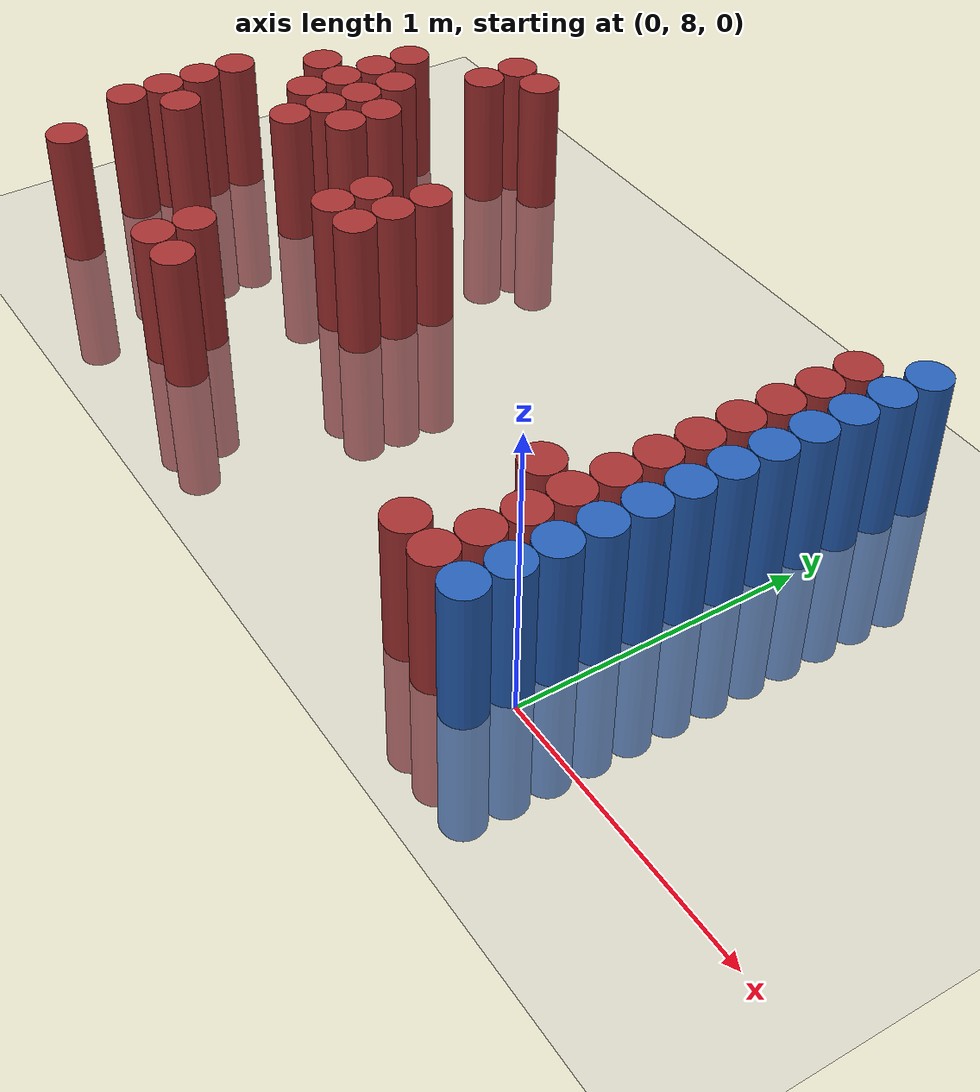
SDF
<sdf version="1.6">
 <world name="default">
  <model name="ground_plane">
   <static>1</static>
   <link name="link">
    <collision name="collision">
     <geometry><plane><normal>0 0 1</normal><size>100 100</size></plane></geometry>
     <surface><friction><ode><mu>100</mu><mu2>50</mu2></ode></friction></surface>
    </collision>
    <visual name="visual">
     <cast_shadows>0</cast_shadows>
     <geometry><plane><normal>0 0 1</normal><size>100 100</size></plane></geometry>
     <material>
      <script><uri>file://media/materials/scripts/gazebo.material</uri><name>Gazebo/Grey</name></script>
     </material>
    </visual>
   </link>
  </model>
  <model name="unit_cylinder_229">
   <static>1</static>
   <pose>-2.925000 8.175000 0.000000 0.000000 0.000000 0.000000</pose>
   <link name="link">
    <inertial>
     <mass>1</mass>
     <inertia><ixx>0.145833</ixx><ixy>0</ixy><ixz>0</ixz><iyy>0.145833</iyy><iyz>0</iyz><izz>0.125</izz></inertia>
    </inertial>
    <collision name="collision">
     <geometry><cylinder><radius>0.075000</radius><length>1</length></cylinder></geometry>
    </collision>
    <visual name="visual">
     <geometry><cylinder><radius>0.075000</radius><length>1</length></cylinder></geometry>
     <material>
      <ambient>0.648000 0.192000 0.192000 1</ambient>
      <diffuse>0.648000 0.192000 0.192000 1</diffuse>
     </material>
     <material>
      <script><name>Gazebo/Grey</name><uri>file://media/materials/scripts/gazebo.material</uri></script>
     </material>
    </visual>
   </link>
  </model>
  <model name="unit_cylinder_230">
   <static>1</static>
   <pose>-2.925000 8.325000 0.000000 0.000000 0.000000 0.000000</pose>
   <link name="link">
    <inertial>
     <mass>1</mass>
     <inertia><ixx>0.145833</ixx><ixy>0</ixy><ixz>0</ixz><iyy>0.145833</iyy><iyz>0</iyz><izz>0.125</izz></inertia>
    </inertial>
    <collision name="collision">
     <geometry><cylinder><radius>0.075000</radius><length>1</length></cylinder></geometry>
    </collision>
    <visual name="visual">
     <geometry><cylinder><radius>0.075000</radius><length>1</length></cylinder></geometry>
     <material>
      <ambient>0.648000 0.192000 0.192000 1</ambient>
      <diffuse>0.648000 0.192000 0.192000 1</diffuse>
     </material>
     <material>
      <script><name>Gazebo/Grey</name><uri>file://media/materials/scripts/gazebo.material</uri></script>
     </material>
    </visual>
   </link>
  </model>
  <model name="unit_cylinder_231">
   <static>1</static>
   <pose>-2.925000 8.475000 0.000000 0.000000 0.000000 0.000000</pose>
   <link name="link">
    <inertial>
     <mass>1</mass>
     <inertia><ixx>0.145833</ixx><ixy>0</ixy><ixz>0</ixz><iyy>0.145833</iyy><iyz>0</iyz><izz>0.125</izz></inertia>
    </inertial>
    <collision name="collision">
     <geometry><cylinder><radius>0.075000</radius><length>1</length></cylinder></geometry>
    </collision>
    <visual name="visual">
     <geometry><cylinder><radius>0.075000</radius><length>1</length></cylinder></geometry>
     <material>
      <ambient>0.648000 0.192000 0.192000 1</ambient>
      <diffuse>0.648000 0.192000 0.192000 1</diffuse>
     </material>
     <material>
      <script><name>Gazebo/Grey</name><uri>file://media/materials/scripts/gazebo.material</uri></script>
     </material>
    </visual>
   </link>
  </model>
  <model name="unit_cylinder_232">
   <static>1</static>
   <pose>-2.925000 8.625000 0.000000 0.000000 0.000000 0.000000</pose>
   <link name="link">
    <inertial>
     <mass>1</mass>
     <inertia><ixx>0.145833</ixx><ixy>0</ixy><ixz>0</ixz><iyy>0.145833</iyy><iyz>0</iyz><izz>0.125</izz></inertia>
    </inertial>
    <collision name="collision">
     <geometry><cylinder><radius>0.075000</radius><length>1</length></cylinder></geometry>
    </collision>
    <visual name="visual">
     <geometry><cylinder><radius>0.075000</radius><length>1</length></cylinder></geometry>
     <material>
      <ambient>0.648000 0.192000 0.192000 1</ambient>
      <diffuse>0.648000 0.192000 0.192000 1</diffuse>
     </material>
     <material>
      <script><name>Gazebo/Grey</name><uri>file://media/materials/scripts/gazebo.material</uri></script>
     </material>
    </visual>
   </link>
  </model>
  <model name="unit_cylinder_235">
   <static>1</static>
   <pose>-2.775000 7.875000 0.000000 0.000000 0.000000 0.000000</pose>
   <link name="link">
    <inertial>
     <mass>1</mass>
     <inertia><ixx>0.145833</ixx><ixy>0</ixy><ixz>0</ixz><iyy>0.145833</iyy><iyz>0</iyz><izz>0.125</izz></inertia>
    </inertial>
    <collision name="collision">
     <geometry><cylinder><radius>0.075000</radius><length>1</length></cylinder></geometry>
    </collision>
    <visual name="visual">
     <geometry><cylinder><radius>0.075000</radius><length>1</length></cylinder></geometry>
     <material>
      <ambient>0.648000 0.192000 0.192000 1</ambient>
      <diffuse>0.648000 0.192000 0.192000 1</diffuse>
     </material>
     <material>
      <script><name>Gazebo/Grey</name><uri>file://media/materials/scripts/gazebo.material</uri></script>
     </material>
    </visual>
   </link>
  </model>
  <model name="unit_cylinder_236">
   <static>1</static>
   <pose>-2.775000 8.325000 0.000000 0.000000 0.000000 0.000000</pose>
   <link name="link">
    <inertial>
     <mass>1</mass>
     <inertia><ixx>0.145833</ixx><ixy>0</ixy><ixz>0</ixz><iyy>0.145833</iyy><iyz>0</iyz><izz>0.125</izz></inertia>
    </inertial>
    <collision name="collision">
     <geometry><cylinder><radius>0.075000</radius><length>1</length></cylinder></geometry>
    </collision>
    <visual name="visual">
     <geometry><cylinder><radius>0.075000</radius><length>1</length></cylinder></geometry>
     <material>
      <ambient>0.648000 0.192000 0.192000 1</ambient>
      <diffuse>0.648000 0.192000 0.192000 1</diffuse>
     </material>
     <material>
      <script><name>Gazebo/Grey</name><uri>file://media/materials/scripts/gazebo.material</uri></script>
     </material>
    </visual>
   </link>
  </model>
  <model name="unit_cylinder_237">
   <static>1</static>
   <pose>-2.775000 8.925000 0.000000 0.000000 0.000000 0.000000</pose>
   <link name="link">
    <inertial>
     <mass>1</mass>
     <inertia><ixx>0.145833</ixx><ixy>0</ixy><ixz>0</ixz><iyy>0.145833</iyy><iyz>0</iyz><izz>0.125</izz></inertia>
    </inertial>
    <collision name="collision">
     <geometry><cylinder><radius>0.075000</radius><length>1</length></cylinder></geometry>
    </collision>
    <visual name="visual">
     <geometry><cylinder><radius>0.075000</radius><length>1</length></cylinder></geometry>
     <material>
      <ambient>0.648000 0.192000 0.192000 1</ambient>
      <diffuse>0.648000 0.192000 0.192000 1</diffuse>
     </material>
     <material>
      <script><name>Gazebo/Grey</name><uri>file://media/materials/scripts/gazebo.material</uri></script>
     </material>
    </visual>
   </link>
  </model>
  <model name="unit_cylinder_239">
   <static>1</static>
   <pose>-2.625000 8.775000 0.000000 0.000000 0.000000 0.000000</pose>
   <link name="link">
    <inertial>
     <mass>1</mass>
     <inertia><ixx>0.145833</ixx><ixy>0</ixy><ixz>0</ixz><iyy>0.145833</iyy><iyz>0</iyz><izz>0.125</izz></inertia>
    </inertial>
    <collision name="collision">
     <geometry><cylinder><radius>0.075000</radius><length>1</length></cylinder></geometry>
    </collision>
    <visual name="visual">
     <geometry><cylinder><radius>0.075000</radius><length>1</length></cylinder></geometry>
     <material>
      <ambient>0.648000 0.192000 0.192000 1</ambient>
      <diffuse>0.648000 0.192000 0.192000 1</diffuse>
     </material>
     <material>
      <script><name>Gazebo/Grey</name><uri>file://media/materials/scripts/gazebo.material</uri></script>
     </material>
    </visual>
   </link>
  </model>
  <model name="unit_cylinder_240">
   <static>1</static>
   <pose>-2.625000 8.925000 0.000000 0.000000 0.000000 0.000000</pose>
   <link name="link">
    <inertial>
     <mass>1</mass>
     <inertia><ixx>0.145833</ixx><ixy>0</ixy><ixz>0</ixz><iyy>0.145833</iyy><iyz>0</iyz><izz>0.125</izz></inertia>
    </inertial>
    <collision name="collision">
     <geometry><cylinder><radius>0.075000</radius><length>1</length></cylinder></geometry>
    </collision>
    <visual name="visual">
     <geometry><cylinder><radius>0.075000</radius><length>1</length></cylinder></geometry>
     <material>
      <ambient>0.648000 0.192000 0.192000 1</ambient>
      <diffuse>0.648000 0.192000 0.192000 1</diffuse>
     </material>
     <material>
      <script><name>Gazebo/Grey</name><uri>file://media/materials/scripts/gazebo.material</uri></script>
     </material>
    </visual>
   </link>
  </model>
  <model name="unit_cylinder_241">
   <static>1</static>
   <pose>-2.625000 9.075000 0.000000 0.000000 0.000000 0.000000</pose>
   <link name="link">
    <inertial>
     <mass>1</mass>
     <inertia><ixx>0.145833</ixx><ixy>0</ixy><ixz>0</ixz><iyy>0.145833</iyy><iyz>0</iyz><izz>0.125</izz></inertia>
    </inertial>
    <collision name="collision">
     <geometry><cylinder><radius>0.075000</radius><length>1</length></cylinder></geometry>
    </collision>
    <visual name="visual">
     <geometry><cylinder><radius>0.075000</radius><length>1</length></cylinder></geometry>
     <material>
      <ambient>0.648000 0.192000 0.192000 1</ambient>
      <diffuse>0.648000 0.192000 0.192000 1</diffuse>
     </material>
     <material>
      <script><name>Gazebo/Grey</name><uri>file://media/materials/scripts/gazebo.material</uri></script>
     </material>
    </visual>
   </link>
  </model>
  <model name="unit_cylinder_242">
   <static>1</static>
   <pose>-2.625000 9.225000 0.000000 0.000000 0.000000 0.000000</pose>
   <link name="link">
    <inertial>
     <mass>1</mass>
     <inertia><ixx>0.145833</ixx><ixy>0</ixy><ixz>0</ixz><iyy>0.145833</iyy><iyz>0</iyz><izz>0.125</izz></inertia>
    </inertial>
    <collision name="collision">
     <geometry><cylinder><radius>0.075000</radius><length>1</length></cylinder></geometry>
    </collision>
    <visual name="visual">
     <geometry><cylinder><radius>0.075000</radius><length>1</length></cylinder></geometry>
     <material>
      <ambient>0.648000 0.192000 0.192000 1</ambient>
      <diffuse>0.648000 0.192000 0.192000 1</diffuse>
     </material>
     <material>
      <script><name>Gazebo/Grey</name><uri>file://media/materials/scripts/gazebo.material</uri></script>
     </material>
    </visual>
   </link>
  </model>
  <model name="unit_cylinder_248">
   <static>1</static>
   <pose>-2.475000 8.625000 0.000000 0.000000 0.000000 0.000000</pose>
   <link name="link">
    <inertial>
     <mass>1</mass>
     <inertia><ixx>0.145833</ixx><ixy>0</ixy><ixz>0</ixz><iyy>0.145833</iyy><iyz>0</iyz><izz>0.125</izz></inertia>
    </inertial>
    <collision name="collision">
     <geometry><cylinder><radius>0.075000</radius><length>1</length></cylinder></geometry>
    </collision>
    <visual name="visual">
     <geometry><cylinder><radius>0.075000</radius><length>1</length></cylinder></geometry>
     <material>
      <ambient>0.648000 0.192000 0.192000 1</ambient>
      <diffuse>0.648000 0.192000 0.192000 1</diffuse>
     </material>
     <material>
      <script><name>Gazebo/Grey</name><uri>file://media/materials/scripts/gazebo.material</uri></script>
     </material>
    </visual>
   </link>
  </model>
  <model name="unit_cylinder_249">
   <static>1</static>
   <pose>-2.475000 8.775000 0.000000 0.000000 0.000000 0.000000</pose>
   <link name="link">
    <inertial>
     <mass>1</mass>
     <inertia><ixx>0.145833</ixx><ixy>0</ixy><ixz>0</ixz><iyy>0.145833</iyy><iyz>0</iyz><izz>0.125</izz></inertia>
    </inertial>
    <collision name="collision">
     <geometry><cylinder><radius>0.075000</radius><length>1</length></cylinder></geometry>
    </collision>
    <visual name="visual">
     <geometry><cylinder><radius>0.075000</radius><length>1</length></cylinder></geometry>
     <material>
      <ambient>0.648000 0.192000 0.192000 1</ambient>
      <diffuse>0.648000 0.192000 0.192000 1</diffuse>
     </material>
     <material>
      <script><name>Gazebo/Grey</name><uri>file://media/materials/scripts/gazebo.material</uri></script>
     </material>
    </visual>
   </link>
  </model>
  <model name="unit_cylinder_250">
   <static>1</static>
   <pose>-2.475000 8.925000 0.000000 0.000000 0.000000 0.000000</pose>
   <link name="link">
    <inertial>
     <mass>1</mass>
     <inertia><ixx>0.145833</ixx><ixy>0</ixy><ixz>0</ixz><iyy>0.145833</iyy><iyz>0</iyz><izz>0.125</izz></inertia>
    </inertial>
    <collision name="collision">
     <geometry><cylinder><radius>0.075000</radius><length>1</length></cylinder></geometry>
    </collision>
    <visual name="visual">
     <geometry><cylinder><radius>0.075000</radius><length>1</length></cylinder></geometry>
     <material>
      <ambient>0.648000 0.192000 0.192000 1</ambient>
      <diffuse>0.648000 0.192000 0.192000 1</diffuse>
     </material>
     <material>
      <script><name>Gazebo/Grey</name><uri>file://media/materials/scripts/gazebo.material</uri></script>
     </material>
    </visual>
   </link>
  </model>
  <model name="unit_cylinder_251">
   <static>1</static>
   <pose>-2.475000 9.075000 0.000000 0.000000 0.000000 0.000000</pose>
   <link name="link">
    <inertial>
     <mass>1</mass>
     <inertia><ixx>0.145833</ixx><ixy>0</ixy><ixz>0</ixz><iyy>0.145833</iyy><iyz>0</iyz><izz>0.125</izz></inertia>
    </inertial>
    <collision name="collision">
     <geometry><cylinder><radius>0.075000</radius><length>1</length></cylinder></geometry>
    </collision>
    <visual name="visual">
     <geometry><cylinder><radius>0.075000</radius><length>1</length></cylinder></geometry>
     <material>
      <ambient>0.648000 0.192000 0.192000 1</ambient>
      <diffuse>0.648000 0.192000 0.192000 1</diffuse>
     </material>
     <material>
      <script><name>Gazebo/Grey</name><uri>file://media/materials/scripts/gazebo.material</uri></script>
     </material>
    </visual>
   </link>
  </model>
  <model name="unit_cylinder_258">
   <static>1</static>
   <pose>-2.325000 8.775000 0.000000 0.000000 0.000000 0.000000</pose>
   <link name="link">
    <inertial>
     <mass>1</mass>
     <inertia><ixx>0.145833</ixx><ixy>0</ixy><ixz>0</ixz><iyy>0.145833</iyy><iyz>0</iyz><izz>0.125</izz></inertia>
    </inertial>
    <collision name="collision">
     <geometry><cylinder><radius>0.075000</radius><length>1</length></cylinder></geometry>
    </collision>
    <visual name="visual">
     <geometry><cylinder><radius>0.075000</radius><length>1</length></cylinder></geometry>
     <material>
      <ambient>0.648000 0.192000 0.192000 1</ambient>
      <diffuse>0.648000 0.192000 0.192000 1</diffuse>
     </material>
     <material>
      <script><name>Gazebo/Grey</name><uri>file://media/materials/scripts/gazebo.material</uri></script>
     </material>
    </visual>
   </link>
  </model>
  <model name="unit_cylinder_259">
   <static>1</static>
   <pose>-2.325000 8.925000 0.000000 0.000000 0.000000 0.000000</pose>
   <link name="link">
    <inertial>
     <mass>1</mass>
     <inertia><ixx>0.145833</ixx><ixy>0</ixy><ixz>0</ixz><iyy>0.145833</iyy><iyz>0</iyz><izz>0.125</izz></inertia>
    </inertial>
    <collision name="collision">
     <geometry><cylinder><radius>0.075000</radius><length>1</length></cylinder></geometry>
    </collision>
    <visual name="visual">
     <geometry><cylinder><radius>0.075000</radius><length>1</length></cylinder></geometry>
     <material>
      <ambient>0.648000 0.192000 0.192000 1</ambient>
      <diffuse>0.648000 0.192000 0.192000 1</diffuse>
     </material>
     <material>
      <script><name>Gazebo/Grey</name><uri>file://media/materials/scripts/gazebo.material</uri></script>
     </material>
    </visual>
   </link>
  </model>
  <model name="unit_cylinder_260">
   <static>1</static>
   <pose>-2.325000 9.375000 0.000000 0.000000 0.000000 0.000000</pose>
   <link name="link">
    <inertial>
     <mass>1</mass>
     <inertia><ixx>0.145833</ixx><ixy>0</ixy><ixz>0</ixz><iyy>0.145833</iyy><iyz>0</iyz><izz>0.125</izz></inertia>
    </inertial>
    <collision name="collision">
     <geometry><cylinder><radius>0.075000</radius><length>1</length></cylinder></geometry>
    </collision>
    <visual name="visual">
     <geometry><cylinder><radius>0.075000</radius><length>1</length></cylinder></geometry>
     <material>
      <ambient>0.648000 0.192000 0.192000 1</ambient>
      <diffuse>0.648000 0.192000 0.192000 1</diffuse>
     </material>
     <material>
      <script><name>Gazebo/Grey</name><uri>file://media/materials/scripts/gazebo.material</uri></script>
     </material>
    </visual>
   </link>
  </model>
  <model name="unit_cylinder_261">
   <static>1</static>
   <pose>-2.325000 9.525000 0.000000 0.000000 0.000000 0.000000</pose>
   <link name="link">
    <inertial>
     <mass>1</mass>
     <inertia><ixx>0.145833</ixx><ixy>0</ixy><ixz>0</ixz><iyy>0.145833</iyy><iyz>0</iyz><izz>0.125</izz></inertia>
    </inertial>
    <collision name="collision">
     <geometry><cylinder><radius>0.075000</radius><length>1</length></cylinder></geometry>
    </collision>
    <visual name="visual">
     <geometry><cylinder><radius>0.075000</radius><length>1</length></cylinder></geometry>
     <material>
      <ambient>0.648000 0.192000 0.192000 1</ambient>
      <diffuse>0.648000 0.192000 0.192000 1</diffuse>
     </material>
     <material>
      <script><name>Gazebo/Grey</name><uri>file://media/materials/scripts/gazebo.material</uri></script>
     </material>
    </visual>
   </link>
  </model>
  <model name="unit_cylinder_272">
   <static>1</static>
   <pose>-2.175000 9.525000 0.000000 0.000000 0.000000 0.000000</pose>
   <link name="link">
    <inertial>
     <mass>1</mass>
     <inertia><ixx>0.145833</ixx><ixy>0</ixy><ixz>0</ixz><iyy>0.145833</iyy><iyz>0</iyz><izz>0.125</izz></inertia>
    </inertial>
    <collision name="collision">
     <geometry><cylinder><radius>0.075000</radius><length>1</length></cylinder></geometry>
    </collision>
    <visual name="visual">
     <geometry><cylinder><radius>0.075000</radius><length>1</length></cylinder></geometry>
     <material>
      <ambient>0.648000 0.192000 0.192000 1</ambient>
      <diffuse>0.648000 0.192000 0.192000 1</diffuse>
     </material>
     <material>
      <script><name>Gazebo/Grey</name><uri>file://media/materials/scripts/gazebo.material</uri></script>
     </material>
    </visual>
   </link>
  </model>
  <model name="unit_cylinder_282">
   <static>1</static>
   <pose>-2.025000 7.875000 0.000000 0.000000 0.000000 0.000000</pose>
   <link name="link">
    <inertial>
     <mass>1</mass>
     <inertia><ixx>0.145833</ixx><ixy>0</ixy><ixz>0</ixz><iyy>0.145833</iyy><iyz>0</iyz><izz>0.125</izz></inertia>
    </inertial>
    <collision name="collision">
     <geometry><cylinder><radius>0.075000</radius><length>1</length></cylinder></geometry>
    </collision>
    <visual name="visual">
     <geometry><cylinder><radius>0.075000</radius><length>1</length></cylinder></geometry>
     <material>
      <ambient>0.648000 0.192000 0.192000 1</ambient>
      <diffuse>0.648000 0.192000 0.192000 1</diffuse>
     </material>
     <material>
      <script><name>Gazebo/Grey</name><uri>file://media/materials/scripts/gazebo.material</uri></script>
     </material>
    </visual>
   </link>
  </model>
  <model name="unit_cylinder_283">
   <static>1</static>
   <pose>-2.025000 8.025000 0.000000 0.000000 0.000000 0.000000</pose>
   <link name="link">
    <inertial>
     <mass>1</mass>
     <inertia><ixx>0.145833</ixx><ixy>0</ixy><ixz>0</ixz><iyy>0.145833</iyy><iyz>0</iyz><izz>0.125</izz></inertia>
    </inertial>
    <collision name="collision">
     <geometry><cylinder><radius>0.075000</radius><length>1</length></cylinder></geometry>
    </collision>
    <visual name="visual">
     <geometry><cylinder><radius>0.075000</radius><length>1</length></cylinder></geometry>
     <material>
      <ambient>0.648000 0.192000 0.192000 1</ambient>
      <diffuse>0.648000 0.192000 0.192000 1</diffuse>
     </material>
     <material>
      <script><name>Gazebo/Grey</name><uri>file://media/materials/scripts/gazebo.material</uri></script>
     </material>
    </visual>
   </link>
  </model>
  <model name="unit_cylinder_290">
   <static>1</static>
   <pose>-1.875000 7.875000 0.000000 0.000000 0.000000 0.000000</pose>
   <link name="link">
    <inertial>
     <mass>1</mass>
     <inertia><ixx>0.145833</ixx><ixy>0</ixy><ixz>0</ixz><iyy>0.145833</iyy><iyz>0</iyz><izz>0.125</izz></inertia>
    </inertial>
    <collision name="collision">
     <geometry><cylinder><radius>0.075000</radius><length>1</length></cylinder></geometry>
    </collision>
    <visual name="visual">
     <geometry><cylinder><radius>0.075000</radius><length>1</length></cylinder></geometry>
     <material>
      <ambient>0.648000 0.192000 0.192000 1</ambient>
      <diffuse>0.648000 0.192000 0.192000 1</diffuse>
     </material>
     <material>
      <script><name>Gazebo/Grey</name><uri>file://media/materials/scripts/gazebo.material</uri></script>
     </material>
    </visual>
   </link>
  </model>
  <model name="unit_cylinder_291">
   <static>1</static>
   <pose>-1.875000 8.475000 0.000000 0.000000 0.000000 0.000000</pose>
   <link name="link">
    <inertial>
     <mass>1</mass>
     <inertia><ixx>0.145833</ixx><ixy>0</ixy><ixz>0</ixz><iyy>0.145833</iyy><iyz>0</iyz><izz>0.125</izz></inertia>
    </inertial>
    <collision name="collision">
     <geometry><cylinder><radius>0.075000</radius><length>1</length></cylinder></geometry>
    </collision>
    <visual name="visual">
     <geometry><cylinder><radius>0.075000</radius><length>1</length></cylinder></geometry>
     <material>
      <ambient>0.648000 0.192000 0.192000 1</ambient>
      <diffuse>0.648000 0.192000 0.192000 1</diffuse>
     </material>
     <material>
      <script><name>Gazebo/Grey</name><uri>file://media/materials/scripts/gazebo.material</uri></script>
     </material>
    </visual>
   </link>
  </model>
  <model name="unit_cylinder_292">
   <static>1</static>
   <pose>-1.875000 8.625000 0.000000 0.000000 0.000000 0.000000</pose>
   <link name="link">
    <inertial>
     <mass>1</mass>
     <inertia><ixx>0.145833</ixx><ixy>0</ixy><ixz>0</ixz><iyy>0.145833</iyy><iyz>0</iyz><izz>0.125</izz></inertia>
    </inertial>
    <collision name="collision">
     <geometry><cylinder><radius>0.075000</radius><length>1</length></cylinder></geometry>
    </collision>
    <visual name="visual">
     <geometry><cylinder><radius>0.075000</radius><length>1</length></cylinder></geometry>
     <material>
      <ambient>0.648000 0.192000 0.192000 1</ambient>
      <diffuse>0.648000 0.192000 0.192000 1</diffuse>
     </material>
     <material>
      <script><name>Gazebo/Grey</name><uri>file://media/materials/scripts/gazebo.material</uri></script>
     </material>
    </visual>
   </link>
  </model>
  <model name="unit_cylinder_300">
   <static>1</static>
   <pose>-1.725000 8.475000 0.000000 0.000000 0.000000 0.000000</pose>
   <link name="link">
    <inertial>
     <mass>1</mass>
     <inertia><ixx>0.145833</ixx><ixy>0</ixy><ixz>0</ixz><iyy>0.145833</iyy><iyz>0</iyz><izz>0.125</izz></inertia>
    </inertial>
    <collision name="collision">
     <geometry><cylinder><radius>0.075000</radius><length>1</length></cylinder></geometry>
    </collision>
    <visual name="visual">
     <geometry><cylinder><radius>0.075000</radius><length>1</length></cylinder></geometry>
     <material>
      <ambient>0.648000 0.192000 0.192000 1</ambient>
      <diffuse>0.648000 0.192000 0.192000 1</diffuse>
     </material>
     <material>
      <script><name>Gazebo/Grey</name><uri>file://media/materials/scripts/gazebo.material</uri></script>
     </material>
    </visual>
   </link>
  </model>
  <model name="unit_cylinder_301">
   <static>1</static>
   <pose>-1.725000 8.625000 0.000000 0.000000 0.000000 0.000000</pose>
   <link name="link">
    <inertial>
     <mass>1</mass>
     <inertia><ixx>0.145833</ixx><ixy>0</ixy><ixz>0</ixz><iyy>0.145833</iyy><iyz>0</iyz><izz>0.125</izz></inertia>
    </inertial>
    <collision name="collision">
     <geometry><cylinder><radius>0.075000</radius><length>1</length></cylinder></geometry>
    </collision>
    <visual name="visual">
     <geometry><cylinder><radius>0.075000</radius><length>1</length></cylinder></geometry>
     <material>
      <ambient>0.648000 0.192000 0.192000 1</ambient>
      <diffuse>0.648000 0.192000 0.192000 1</diffuse>
     </material>
     <material>
      <script><name>Gazebo/Grey</name><uri>file://media/materials/scripts/gazebo.material</uri></script>
     </material>
    </visual>
   </link>
  </model>
  <model name="unit_cylinder_302">
   <static>1</static>
   <pose>-1.725000 8.775000 0.000000 0.000000 0.000000 0.000000</pose>
   <link name="link">
    <inertial>
     <mass>1</mass>
     <inertia><ixx>0.145833</ixx><ixy>0</ixy><ixz>0</ixz><iyy>0.145833</iyy><iyz>0</iyz><izz>0.125</izz></inertia>
    </inertial>
    <collision name="collision">
     <geometry><cylinder><radius>0.075000</radius><length>1</length></cylinder></geometry>
    </collision>
    <visual name="visual">
     <geometry><cylinder><radius>0.075000</radius><length>1</length></cylinder></geometry>
     <material>
      <ambient>0.648000 0.192000 0.192000 1</ambient>
      <diffuse>0.648000 0.192000 0.192000 1</diffuse>
     </material>
     <material>
      <script><name>Gazebo/Grey</name><uri>file://media/materials/scripts/gazebo.material</uri></script>
     </material>
    </visual>
   </link>
  </model>
  <model name="unit_cylinder_318">
   <static>1</static>
   <pose>-0.375000 7.875000 0.000000 0.000000 0.000000 0.000000</pose>
   <link name="link">
    <inertial>
     <mass>1</mass>
     <inertia><ixx>0.145833</ixx><ixy>0</ixy><ixz>0</ixz><iyy>0.145833</iyy><iyz>0</iyz><izz>0.125</izz></inertia>
    </inertial>
    <collision name="collision">
     <geometry><cylinder><radius>0.075000</radius><length>1</length></cylinder></geometry>
    </collision>
    <visual name="visual">
     <geometry><cylinder><radius>0.075000</radius><length>1</length></cylinder></geometry>
     <material>
      <ambient>0.648000 0.192000 0.192000 1</ambient>
      <diffuse>0.648000 0.192000 0.192000 1</diffuse>
     </material>
     <material>
      <script><name>Gazebo/Grey</name><uri>file://media/materials/scripts/gazebo.material</uri></script>
     </material>
    </visual>
   </link>
  </model>
  <model name="unit_cylinder_319">
   <static>1</static>
   <pose>-0.375000 8.325000 0.000000 0.000000 0.000000 0.000000</pose>
   <link name="link">
    <inertial>
     <mass>1</mass>
     <inertia><ixx>0.145833</ixx><ixy>0</ixy><ixz>0</ixz><iyy>0.145833</iyy><iyz>0</iyz><izz>0.125</izz></inertia>
    </inertial>
    <collision name="collision">
     <geometry><cylinder><radius>0.075000</radius><length>1</length></cylinder></geometry>
    </collision>
    <visual name="visual">
     <geometry><cylinder><radius>0.075000</radius><length>1</length></cylinder></geometry>
     <material>
      <ambient>0.648000 0.192000 0.192000 1</ambient>
      <diffuse>0.648000 0.192000 0.192000 1</diffuse>
     </material>
     <material>
      <script><name>Gazebo/Grey</name><uri>file://media/materials/scripts/gazebo.material</uri></script>
     </material>
    </visual>
   </link>
  </model>
  <model name="unit_cylinder_328">
   <static>1</static>
   <pose>-0.225000 7.875000 0.000000 0.000000 0.000000 0.000000</pose>
   <link name="link">
    <inertial>
     <mass>1</mass>
     <inertia><ixx>0.145833</ixx><ixy>0</ixy><ixz>0</ixz><iyy>0.145833</iyy><iyz>0</iyz><izz>0.125</izz></inertia>
    </inertial>
    <collision name="collision">
     <geometry><cylinder><radius>0.075000</radius><length>1</length></cylinder></geometry>
    </collision>
    <visual name="visual">
     <geometry><cylinder><radius>0.075000</radius><length>1</length></cylinder></geometry>
     <material>
      <ambient>0.648000 0.192000 0.192000 1</ambient>
      <diffuse>0.648000 0.192000 0.192000 1</diffuse>
     </material>
     <material>
      <script><name>Gazebo/Grey</name><uri>file://media/materials/scripts/gazebo.material</uri></script>
     </material>
    </visual>
   </link>
  </model>
  <model name="unit_cylinder_329">
   <static>1</static>
   <pose>-0.225000 8.025000 0.000000 0.000000 0.000000 0.000000</pose>
   <link name="link">
    <inertial>
     <mass>1</mass>
     <inertia><ixx>0.145833</ixx><ixy>0</ixy><ixz>0</ixz><iyy>0.145833</iyy><iyz>0</iyz><izz>0.125</izz></inertia>
    </inertial>
    <collision name="collision">
     <geometry><cylinder><radius>0.075000</radius><length>1</length></cylinder></geometry>
    </collision>
    <visual name="visual">
     <geometry><cylinder><radius>0.075000</radius><length>1</length></cylinder></geometry>
     <material>
      <ambient>0.648000 0.192000 0.192000 1</ambient>
      <diffuse>0.648000 0.192000 0.192000 1</diffuse>
     </material>
     <material>
      <script><name>Gazebo/Grey</name><uri>file://media/materials/scripts/gazebo.material</uri></script>
     </material>
    </visual>
   </link>
  </model>
  <model name="unit_cylinder_330">
   <static>1</static>
   <pose>-0.225000 8.175000 0.000000 0.000000 0.000000 0.000000</pose>
   <link name="link">
    <inertial>
     <mass>1</mass>
     <inertia><ixx>0.145833</ixx><ixy>0</ixy><ixz>0</ixz><iyy>0.145833</iyy><iyz>0</iyz><izz>0.125</izz></inertia>
    </inertial>
    <collision name="collision">
     <geometry><cylinder><radius>0.075000</radius><length>1</length></cylinder></geometry>
    </collision>
    <visual name="visual">
     <geometry><cylinder><radius>0.075000</radius><length>1</length></cylinder></geometry>
     <material>
      <ambient>0.648000 0.192000 0.192000 1</ambient>
      <diffuse>0.648000 0.192000 0.192000 1</diffuse>
     </material>
     <material>
      <script><name>Gazebo/Grey</name><uri>file://media/materials/scripts/gazebo.material</uri></script>
     </material>
    </visual>
   </link>
  </model>
  <model name="unit_cylinder_331">
   <static>1</static>
   <pose>-0.225000 8.325000 0.000000 0.000000 0.000000 0.000000</pose>
   <link name="link">
    <inertial>
     <mass>1</mass>
     <inertia><ixx>0.145833</ixx><ixy>0</ixy><ixz>0</ixz><iyy>0.145833</iyy><iyz>0</iyz><izz>0.125</izz></inertia>
    </inertial>
    <collision name="collision">
     <geometry><cylinder><radius>0.075000</radius><length>1</length></cylinder></geometry>
    </collision>
    <visual name="visual">
     <geometry><cylinder><radius>0.075000</radius><length>1</length></cylinder></geometry>
     <material>
      <ambient>0.648000 0.192000 0.192000 1</ambient>
      <diffuse>0.648000 0.192000 0.192000 1</diffuse>
     </material>
     <material>
      <script><name>Gazebo/Grey</name><uri>file://media/materials/scripts/gazebo.material</uri></script>
     </material>
    </visual>
   </link>
  </model>
  <model name="unit_cylinder_332">
   <static>1</static>
   <pose>-0.225000 8.475000 0.000000 0.000000 0.000000 0.000000</pose>
   <link name="link">
    <inertial>
     <mass>1</mass>
     <inertia><ixx>0.145833</ixx><ixy>0</ixy><ixz>0</ixz><iyy>0.145833</iyy><iyz>0</iyz><izz>0.125</izz></inertia>
    </inertial>
    <collision name="collision">
     <geometry><cylinder><radius>0.075000</radius><length>1</length></cylinder></geometry>
    </collision>
    <visual name="visual">
     <geometry><cylinder><radius>0.075000</radius><length>1</length></cylinder></geometry>
     <material>
      <ambient>0.648000 0.192000 0.192000 1</ambient>
      <diffuse>0.648000 0.192000 0.192000 1</diffuse>
     </material>
     <material>
      <script><name>Gazebo/Grey</name><uri>file://media/materials/scripts/gazebo.material</uri></script>
     </material>
    </visual>
   </link>
  </model>
  <model name="unit_cylinder_333">
   <static>1</static>
   <pose>-0.225000 8.625000 0.000000 0.000000 0.000000 0.000000</pose>
   <link name="link">
    <inertial>
     <mass>1</mass>
     <inertia><ixx>0.145833</ixx><ixy>0</ixy><ixz>0</ixz><iyy>0.145833</iyy><iyz>0</iyz><izz>0.125</izz></inertia>
    </inertial>
    <collision name="collision">
     <geometry><cylinder><radius>0.075000</radius><length>1</length></cylinder></geometry>
    </collision>
    <visual name="visual">
     <geometry><cylinder><radius>0.075000</radius><length>1</length></cylinder></geometry>
     <material>
      <ambient>0.648000 0.192000 0.192000 1</ambient>
      <diffuse>0.648000 0.192000 0.192000 1</diffuse>
     </material>
     <material>
      <script><name>Gazebo/Grey</name><uri>file://media/materials/scripts/gazebo.material</uri></script>
     </material>
    </visual>
   </link>
  </model>
  <model name="unit_cylinder_334">
   <static>1</static>
   <pose>-0.225000 8.775000 0.000000 0.000000 0.000000 0.000000</pose>
   <link name="link">
    <inertial>
     <mass>1</mass>
     <inertia><ixx>0.145833</ixx><ixy>0</ixy><ixz>0</ixz><iyy>0.145833</iyy><iyz>0</iyz><izz>0.125</izz></inertia>
    </inertial>
    <collision name="collision">
     <geometry><cylinder><radius>0.075000</radius><length>1</length></cylinder></geometry>
    </collision>
    <visual name="visual">
     <geometry><cylinder><radius>0.075000</radius><length>1</length></cylinder></geometry>
     <material>
      <ambient>0.648000 0.192000 0.192000 1</ambient>
      <diffuse>0.648000 0.192000 0.192000 1</diffuse>
     </material>
     <material>
      <script><name>Gazebo/Grey</name><uri>file://media/materials/scripts/gazebo.material</uri></script>
     </material>
    </visual>
   </link>
  </model>
  <model name="unit_cylinder_335">
   <static>1</static>
   <pose>-0.225000 8.925000 0.000000 0.000000 0.000000 0.000000</pose>
   <link name="link">
    <inertial>
     <mass>1</mass>
     <inertia><ixx>0.145833</ixx><ixy>0</ixy><ixz>0</ixz><iyy>0.145833</iyy><iyz>0</iyz><izz>0.125</izz></inertia>
    </inertial>
    <collision name="collision">
     <geometry><cylinder><radius>0.075000</radius><length>1</length></cylinder></geometry>
    </collision>
    <visual name="visual">
     <geometry><cylinder><radius>0.075000</radius><length>1</length></cylinder></geometry>
     <material>
      <ambient>0.648000 0.192000 0.192000 1</ambient>
      <diffuse>0.648000 0.192000 0.192000 1</diffuse>
     </material>
     <material>
      <script><name>Gazebo/Grey</name><uri>file://media/materials/scripts/gazebo.material</uri></script>
     </material>
    </visual>
   </link>
  </model>
  <model name="unit_cylinder_336">
   <static>1</static>
   <pose>-0.225000 9.075000 0.000000 0.000000 0.000000 0.000000</pose>
   <link name="link">
    <inertial>
     <mass>1</mass>
     <inertia><ixx>0.145833</ixx><ixy>0</ixy><ixz>0</ixz><iyy>0.145833</iyy><iyz>0</iyz><izz>0.125</izz></inertia>
    </inertial>
    <collision name="collision">
     <geometry><cylinder><radius>0.075000</radius><length>1</length></cylinder></geometry>
    </collision>
    <visual name="visual">
     <geometry><cylinder><radius>0.075000</radius><length>1</length></cylinder></geometry>
     <material>
      <ambient>0.648000 0.192000 0.192000 1</ambient>
      <diffuse>0.648000 0.192000 0.192000 1</diffuse>
     </material>
     <material>
      <script><name>Gazebo/Grey</name><uri>file://media/materials/scripts/gazebo.material</uri></script>
     </material>
    </visual>
   </link>
  </model>
  <model name="unit_cylinder_337">
   <static>1</static>
   <pose>-0.225000 9.225000 0.000000 0.000000 0.000000 0.000000</pose>
   <link name="link">
    <inertial>
     <mass>1</mass>
     <inertia><ixx>0.145833</ixx><ixy>0</ixy><ixz>0</ixz><iyy>0.145833</iyy><iyz>0</iyz><izz>0.125</izz></inertia>
    </inertial>
    <collision name="collision">
     <geometry><cylinder><radius>0.075000</radius><length>1</length></cylinder></geometry>
    </collision>
    <visual name="visual">
     <geometry><cylinder><radius>0.075000</radius><length>1</length></cylinder></geometry>
     <material>
      <ambient>0.648000 0.192000 0.192000 1</ambient>
      <diffuse>0.648000 0.192000 0.192000 1</diffuse>
     </material>
     <material>
      <script><name>Gazebo/Grey</name><uri>file://media/materials/scripts/gazebo.material</uri></script>
     </material>
    </visual>
   </link>
  </model>
  <model name="unit_cylinder_338">
   <static>1</static>
   <pose>-0.225000 9.375000 0.000000 0.000000 0.000000 0.000000</pose>
   <link name="link">
    <inertial>
     <mass>1</mass>
     <inertia><ixx>0.145833</ixx><ixy>0</ixy><ixz>0</ixz><iyy>0.145833</iyy><iyz>0</iyz><izz>0.125</izz></inertia>
    </inertial>
    <collision name="collision">
     <geometry><cylinder><radius>0.075000</radius><length>1</length></cylinder></geometry>
    </collision>
    <visual name="visual">
     <geometry><cylinder><radius>0.075000</radius><length>1</length></cylinder></geometry>
     <material>
      <ambient>0.648000 0.192000 0.192000 1</ambient>
      <diffuse>0.648000 0.192000 0.192000 1</diffuse>
     </material>
     <material>
      <script><name>Gazebo/Grey</name><uri>file://media/materials/scripts/gazebo.material</uri></script>
     </material>
    </visual>
   </link>
  </model>
  <model name="unit_cylinder_357">
   <static>1</static>
   <pose>-0.075000 7.875000 0.000000 0.000000 0.000000 0.000000</pose>
   <link name="link">
    <inertial>
     <mass>1</mass>
     <inertia><ixx>0.145833</ixx><ixy>0</ixy><ixz>0</ixz><iyy>0.145833</iyy><iyz>0</iyz><izz>0.125</izz></inertia>
    </inertial>
    <collision name="collision">
     <geometry><cylinder><radius>0.075000</radius><length>1</length></cylinder></geometry>
    </collision>
    <visual name="visual">
     <geometry><cylinder><radius>0.075000</radius><length>1</length></cylinder></geometry>
     <material>
      <ambient>0.152000 0.379000 0.720000 1</ambient>
      <diffuse>0.152000 0.379000 0.720000 1</diffuse>
     </material>
     <material>
      <script><name>Gazebo/Grey</name><uri>file://media/materials/scripts/gazebo.material</uri></script>
     </material>
    </visual>
   </link>
  </model>
  <model name="unit_cylinder_358">
   <static>1</static>
   <pose>-0.075000 8.025000 0.000000 0.000000 0.000000 0.000000</pose>
   <link name="link">
    <inertial>
     <mass>1</mass>
     <inertia><ixx>0.145833</ixx><ixy>0</ixy><ixz>0</ixz><iyy>0.145833</iyy><iyz>0</iyz><izz>0.125</izz></inertia>
    </inertial>
    <collision name="collision">
     <geometry><cylinder><radius>0.075000</radius><length>1</length></cylinder></geometry>
    </collision>
    <visual name="visual">
     <geometry><cylinder><radius>0.075000</radius><length>1</length></cylinder></geometry>
     <material>
      <ambient>0.152000 0.379000 0.720000 1</ambient>
      <diffuse>0.152000 0.379000 0.720000 1</diffuse>
     </material>
     <material>
      <script><name>Gazebo/Grey</name><uri>file://media/materials/scripts/gazebo.material</uri></script>
     </material>
    </visual>
   </link>
  </model>
  <model name="unit_cylinder_359">
   <static>1</static>
   <pose>-0.075000 8.175000 0.000000 0.000000 0.000000 0.000000</pose>
   <link name="link">
    <inertial>
     <mass>1</mass>
     <inertia><ixx>0.145833</ixx><ixy>0</ixy><ixz>0</ixz><iyy>0.145833</iyy><iyz>0</iyz><izz>0.125</izz></inertia>
    </inertial>
    <collision name="collision">
     <geometry><cylinder><radius>0.075000</radius><length>1</length></cylinder></geometry>
    </collision>
    <visual name="visual">
     <geometry><cylinder><radius>0.075000</radius><length>1</length></cylinder></geometry>
     <material>
      <ambient>0.152000 0.379000 0.720000 1</ambient>
      <diffuse>0.152000 0.379000 0.720000 1</diffuse>
     </material>
     <material>
      <script><name>Gazebo/Grey</name><uri>file://media/materials/scripts/gazebo.material</uri></script>
     </material>
    </visual>
   </link>
  </model>
  <model name="unit_cylinder_360">
   <static>1</static>
   <pose>-0.075000 8.325000 0.000000 0.000000 0.000000 0.000000</pose>
   <link name="link">
    <inertial>
     <mass>1</mass>
     <inertia><ixx>0.145833</ixx><ixy>0</ixy><ixz>0</ixz><iyy>0.145833</iyy><iyz>0</iyz><izz>0.125</izz></inertia>
    </inertial>
    <collision name="collision">
     <geometry><cylinder><radius>0.075000</radius><length>1</length></cylinder></geometry>
    </collision>
    <visual name="visual">
     <geometry><cylinder><radius>0.075000</radius><length>1</length></cylinder></geometry>
     <material>
      <ambient>0.152000 0.379000 0.720000 1</ambient>
      <diffuse>0.152000 0.379000 0.720000 1</diffuse>
     </material>
     <material>
      <script><name>Gazebo/Grey</name><uri>file://media/materials/scripts/gazebo.material</uri></script>
     </material>
    </visual>
   </link>
  </model>
  <model name="unit_cylinder_361">
   <static>1</static>
   <pose>-0.075000 8.475000 0.000000 0.000000 0.000000 0.000000</pose>
   <link name="link">
    <inertial>
     <mass>1</mass>
     <inertia><ixx>0.145833</ixx><ixy>0</ixy><ixz>0</ixz><iyy>0.145833</iyy><iyz>0</iyz><izz>0.125</izz></inertia>
    </inertial>
    <collision name="collision">
     <geometry><cylinder><radius>0.075000</radius><length>1</length></cylinder></geometry>
    </collision>
    <visual name="visual">
     <geometry><cylinder><radius>0.075000</radius><length>1</length></cylinder></geometry>
     <material>
      <ambient>0.152000 0.379000 0.720000 1</ambient>
      <diffuse>0.152000 0.379000 0.720000 1</diffuse>
     </material>
     <material>
      <script><name>Gazebo/Grey</name><uri>file://media/materials/scripts/gazebo.material</uri></script>
     </material>
    </visual>
   </link>
  </model>
  <model name="unit_cylinder_362">
   <static>1</static>
   <pose>-0.075000 8.625000 0.000000 0.000000 0.000000 0.000000</pose>
   <link name="link">
    <inertial>
     <mass>1</mass>
     <inertia><ixx>0.145833</ixx><ixy>0</ixy><ixz>0</ixz><iyy>0.145833</iyy><iyz>0</iyz><izz>0.125</izz></inertia>
    </inertial>
    <collision name="collision">
     <geometry><cylinder><radius>0.075000</radius><length>1</length></cylinder></geometry>
    </collision>
    <visual name="visual">
     <geometry><cylinder><radius>0.075000</radius><length>1</length></cylinder></geometry>
     <material>
      <ambient>0.152000 0.379000 0.720000 1</ambient>
      <diffuse>0.152000 0.379000 0.720000 1</diffuse>
     </material>
     <material>
      <script><name>Gazebo/Grey</name><uri>file://media/materials/scripts/gazebo.material</uri></script>
     </material>
    </visual>
   </link>
  </model>
  <model name="unit_cylinder_363">
   <static>1</static>
   <pose>-0.075000 8.775000 0.000000 0.000000 0.000000 0.000000</pose>
   <link name="link">
    <inertial>
     <mass>1</mass>
     <inertia><ixx>0.145833</ixx><ixy>0</ixy><ixz>0</ixz><iyy>0.145833</iyy><iyz>0</iyz><izz>0.125</izz></inertia>
    </inertial>
    <collision name="collision">
     <geometry><cylinder><radius>0.075000</radius><length>1</length></cylinder></geometry>
    </collision>
    <visual name="visual">
     <geometry><cylinder><radius>0.075000</radius><length>1</length></cylinder></geometry>
     <material>
      <ambient>0.152000 0.379000 0.720000 1</ambient>
      <diffuse>0.152000 0.379000 0.720000 1</diffuse>
     </material>
     <material>
      <script><name>Gazebo/Grey</name><uri>file://media/materials/scripts/gazebo.material</uri></script>
     </material>
    </visual>
   </link>
  </model>
  <model name="unit_cylinder_364">
   <static>1</static>
   <pose>-0.075000 8.925000 0.000000 0.000000 0.000000 0.000000</pose>
   <link name="link">
    <inertial>
     <mass>1</mass>
     <inertia><ixx>0.145833</ixx><ixy>0</ixy><ixz>0</ixz><iyy>0.145833</iyy><iyz>0</iyz><izz>0.125</izz></inertia>
    </inertial>
    <collision name="collision">
     <geometry><cylinder><radius>0.075000</radius><length>1</length></cylinder></geometry>
    </collision>
    <visual name="visual">
     <geometry><cylinder><radius>0.075000</radius><length>1</length></cylinder></geometry>
     <material>
      <ambient>0.152000 0.379000 0.720000 1</ambient>
      <diffuse>0.152000 0.379000 0.720000 1</diffuse>
     </material>
     <material>
      <script><name>Gazebo/Grey</name><uri>file://media/materials/scripts/gazebo.material</uri></script>
     </material>
    </visual>
   </link>
  </model>
  <model name="unit_cylinder_365">
   <static>1</static>
   <pose>-0.075000 9.075000 0.000000 0.000000 0.000000 0.000000</pose>
   <link name="link">
    <inertial>
     <mass>1</mass>
     <inertia><ixx>0.145833</ixx><ixy>0</ixy><ixz>0</ixz><iyy>0.145833</iyy><iyz>0</iyz><izz>0.125</izz></inertia>
    </inertial>
    <collision name="collision">
     <geometry><cylinder><radius>0.075000</radius><length>1</length></cylinder></geometry>
    </collision>
    <visual name="visual">
     <geometry><cylinder><radius>0.075000</radius><length>1</length></cylinder></geometry>
     <material>
      <ambient>0.152000 0.379000 0.720000 1</ambient>
      <diffuse>0.152000 0.379000 0.720000 1</diffuse>
     </material>
     <material>
      <script><name>Gazebo/Grey</name><uri>file://media/materials/scripts/gazebo.material</uri></script>
     </material>
    </visual>
   </link>
  </model>
  <model name="unit_cylinder_366">
   <static>1</static>
   <pose>-0.075000 9.225000 0.000000 0.000000 0.000000 0.000000</pose>
   <link name="link">
    <inertial>
     <mass>1</mass>
     <inertia><ixx>0.145833</ixx><ixy>0</ixy><ixz>0</ixz><iyy>0.145833</iyy><iyz>0</iyz><izz>0.125</izz></inertia>
    </inertial>
    <collision name="collision">
     <geometry><cylinder><radius>0.075000</radius><length>1</length></cylinder></geometry>
    </collision>
    <visual name="visual">
     <geometry><cylinder><radius>0.075000</radius><length>1</length></cylinder></geometry>
     <material>
      <ambient>0.152000 0.379000 0.720000 1</ambient>
      <diffuse>0.152000 0.379000 0.720000 1</diffuse>
     </material>
     <material>
      <script><name>Gazebo/Grey</name><uri>file://media/materials/scripts/gazebo.material</uri></script>
     </material>
    </visual>
   </link>
  </model>
  <model name="unit_cylinder_367">
   <static>1</static>
   <pose>-0.075000 9.375000 0.000000 0.000000 0.000000 0.000000</pose>
   <link name="link">
    <inertial>
     <mass>1</mass>
     <inertia><ixx>0.145833</ixx><ixy>0</ixy><ixz>0</ixz><iyy>0.145833</iyy><iyz>0</iyz><izz>0.125</izz></inertia>
    </inertial>
    <collision name="collision">
     <geometry><cylinder><radius>0.075000</radius><length>1</length></cylinder></geometry>
    </collision>
    <visual name="visual">
     <geometry><cylinder><radius>0.075000</radius><length>1</length></cylinder></geometry>
     <material>
      <ambient>0.152000 0.379000 0.720000 1</ambient>
      <diffuse>0.152000 0.379000 0.720000 1</diffuse>
     </material>
     <material>
      <script><name>Gazebo/Grey</name><uri>file://media/materials/scripts/gazebo.material</uri></script>
     </material>
    </visual>
   </link>
  </model>
  <model name="unit_cylinder_368">
   <static>1</static>
   <pose>-0.075000 9.525000 0.000000 0.000000 0.000000 0.000000</pose>
   <link name="link">
    <inertial>
     <mass>1</mass>
     <inertia><ixx>0.145833</ixx><ixy>0</ixy><ixz>0</ixz><iyy>0.145833</iyy><iyz>0</iyz><izz>0.125</izz></inertia>
    </inertial>
    <collision name="collision">
     <geometry><cylinder><radius>0.075000</radius><length>1</length></cylinder></geometry>
    </collision>
    <visual name="visual">
     <geometry><cylinder><radius>0.075000</radius><length>1</length></cylinder></geometry>
     <material>
      <ambient>0.152000 0.379000 0.720000 1</ambient>
      <diffuse>0.152000 0.379000 0.720000 1</diffuse>
     </material>
     <material>
      <script><name>Gazebo/Grey</name><uri>file://media/materials/scripts/gazebo.material</uri></script>
     </material>
    </visual>
   </link>
  </model>
 </world>
</sdf>
